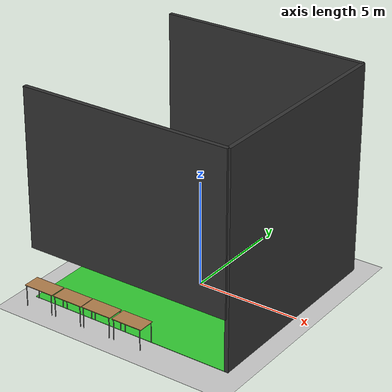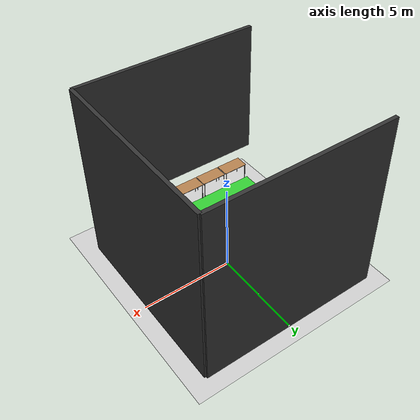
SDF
<sdf version="1.6">
 <world name="default">
  <physics type="ode">
   <max_step_size>0.001</max_step_size>
   <real_time_update_rate>0</real_time_update_rate>
   <ode><solver><type>quick</type><iters>1</iters></solver></ode>
  </physics>
  <scene><ambient>0.4 0.4 0.4 1</ambient><background>0.7 0.7 0.7 1</background><shadows>1</shadows></scene>
  <light name="sun" type="directional">
   <cast_shadows>0</cast_shadows>
   <pose>0 0 10 0 -0 0</pose>
   <diffuse>0.8 0.8 0.8 1</diffuse>
   <specular>0.1 0.1 0.1 1</specular>
   <attenuation>
    <range>1000</range>
    <constant>0.9</constant>
    <linear>0.01</linear>
    <quadratic>0.001</quadratic>
   </attenuation>
   <direction>-0.5 0.5 -1</direction>
  </light>
  <spherical_coordinates>
   <surface_model>EARTH_WGS84</surface_model>
   <latitude_deg>51.990634</latitude_deg>
   <longitude_deg>4.376789</longitude_deg>
   <elevation>0</elevation>
   <heading_deg>150</heading_deg>
  </spherical_coordinates>
  <model name="ground_plane">
   <static>1</static>
   <link name="link">
    <collision name="collision">
     <geometry><plane><normal>0 0 1</normal><size>100 100</size></plane></geometry>
     <surface><friction><ode><mu>100</mu><mu2>50</mu2></ode></friction></surface>
    </collision>
    <visual name="visual">
     <cast_shadows>0</cast_shadows>
     <geometry><plane><normal>0 0 1</normal><size>100 100</size></plane></geometry>
     <material>
      <script><uri>file://media/materials/scripts/gazebo.material</uri><name>Gazebo/Grey</name></script>
     </material>
    </visual>
   </link>
  </model>
  <gravity>0 0 -9.8</gravity>
  <magnetic_field>6e-06 2.3e-05 -4.2e-05</magnetic_field>
  <atmosphere type="adiabatic"/>
  <model name="table">
   <static>1</static>
   <link name="link">
    <collision name="surface">
     <pose>0 0 1 0 -0 0</pose>
     <geometry><box><size>1.5 0.8 0.03</size></box></geometry>
     <surface><friction><ode><mu>0.6</mu><mu2>0.6</mu2></ode></friction></surface>
    </collision>
    <visual name="visual1">
     <pose>0 0 1 0 -0 0</pose>
     <geometry><box><size>1.5 0.8 0.03</size></box></geometry>
     <material>
      <script><uri>file://media/materials/scripts/gazebo.material</uri><name>Gazebo/Wood</name></script>
     </material>
    </visual>
    <collision name="front_left_leg">
     <pose>0.68 0.38 0.5 0 -0 0</pose>
     <geometry><cylinder><radius>0.02</radius><length>1</length></cylinder></geometry>
    </collision>
    <visual name="front_left_leg">
     <pose>0.68 0.38 0.5 0 -0 0</pose>
     <geometry><cylinder><radius>0.02</radius><length>1</length></cylinder></geometry>
     <material>
      <script><uri>file://media/materials/scripts/gazebo.material</uri><name>Gazebo/Grey</name></script>
     </material>
    </visual>
    <collision name="front_right_leg">
     <pose>0.68 -0.38 0.5 0 -0 0</pose>
     <geometry><cylinder><radius>0.02</radius><length>1</length></cylinder></geometry>
    </collision>
    <visual name="front_right_leg">
     <pose>0.68 -0.38 0.5 0 -0 0</pose>
     <geometry><cylinder><radius>0.02</radius><length>1</length></cylinder></geometry>
     <material>
      <script><uri>file://media/materials/scripts/gazebo.material</uri><name>Gazebo/Grey</name></script>
     </material>
    </visual>
    <collision name="back_right_leg">
     <pose>-0.68 -0.38 0.5 0 -0 0</pose>
     <geometry><cylinder><radius>0.02</radius><length>1</length></cylinder></geometry>
    </collision>
    <visual name="back_right_leg">
     <pose>-0.68 -0.38 0.5 0 -0 0</pose>
     <geometry><cylinder><radius>0.02</radius><length>1</length></cylinder></geometry>
     <material>
      <script><uri>file://media/materials/scripts/gazebo.material</uri><name>Gazebo/Grey</name></script>
     </material>
    </visual>
    <collision name="back_left_leg">
     <pose>-0.68 0.38 0.5 0 -0 0</pose>
     <geometry><cylinder><radius>0.02</radius><length>1</length></cylinder></geometry>
    </collision>
    <visual name="back_left_leg">
     <pose>-0.68 0.38 0.5 0 -0 0</pose>
     <geometry><cylinder><radius>0.02</radius><length>1</length></cylinder></geometry>
     <material>
      <script><uri>file://media/materials/scripts/gazebo.material</uri><name>Gazebo/Grey</name></script>
     </material>
    </visual>
   </link>
   <pose>-4.32267 -5.41265 0 0 -0 0</pose>
  </model>
  <model name="table_0">
   <static>1</static>
   <link name="link">
    <collision name="surface">
     <pose>0 0 1 0 -0 0</pose>
     <geometry><box><size>1.5 0.8 0.03</size></box></geometry>
     <surface><friction><ode><mu>0.6</mu><mu2>0.6</mu2></ode></friction></surface>
    </collision>
    <visual name="visual1">
     <pose>0 0 1 0 -0 0</pose>
     <geometry><box><size>1.5 0.8 0.03</size></box></geometry>
     <material>
      <script><uri>file://media/materials/scripts/gazebo.material</uri><name>Gazebo/Wood</name></script>
     </material>
    </visual>
    <collision name="front_left_leg">
     <pose>0.68 0.38 0.5 0 -0 0</pose>
     <geometry><cylinder><radius>0.02</radius><length>1</length></cylinder></geometry>
    </collision>
    <visual name="front_left_leg">
     <pose>0.68 0.38 0.5 0 -0 0</pose>
     <geometry><cylinder><radius>0.02</radius><length>1</length></cylinder></geometry>
     <material>
      <script><uri>file://media/materials/scripts/gazebo.material</uri><name>Gazebo/Grey</name></script>
     </material>
    </visual>
    <collision name="front_right_leg">
     <pose>0.68 -0.38 0.5 0 -0 0</pose>
     <geometry><cylinder><radius>0.02</radius><length>1</length></cylinder></geometry>
    </collision>
    <visual name="front_right_leg">
     <pose>0.68 -0.38 0.5 0 -0 0</pose>
     <geometry><cylinder><radius>0.02</radius><length>1</length></cylinder></geometry>
     <material>
      <script><uri>file://media/materials/scripts/gazebo.material</uri><name>Gazebo/Grey</name></script>
     </material>
    </visual>
    <collision name="back_right_leg">
     <pose>-0.68 -0.38 0.5 0 -0 0</pose>
     <geometry><cylinder><radius>0.02</radius><length>1</length></cylinder></geometry>
    </collision>
    <visual name="back_right_leg">
     <pose>-0.68 -0.38 0.5 0 -0 0</pose>
     <geometry><cylinder><radius>0.02</radius><length>1</length></cylinder></geometry>
     <material>
      <script><uri>file://media/materials/scripts/gazebo.material</uri><name>Gazebo/Grey</name></script>
     </material>
    </visual>
    <collision name="back_left_leg">
     <pose>-0.68 0.38 0.5 0 -0 0</pose>
     <geometry><cylinder><radius>0.02</radius><length>1</length></cylinder></geometry>
    </collision>
    <visual name="back_left_leg">
     <pose>-0.68 0.38 0.5 0 -0 0</pose>
     <geometry><cylinder><radius>0.02</radius><length>1</length></cylinder></geometry>
     <material>
      <script><uri>file://media/materials/scripts/gazebo.material</uri><name>Gazebo/Grey</name></script>
     </material>
    </visual>
   </link>
   <pose>-2.76277 -5.40361 0 0 -0 0</pose>
  </model>
  <model name="table_1">
   <static>1</static>
   <link name="link">
    <collision name="surface">
     <pose>0 0 1 0 -0 0</pose>
     <geometry><box><size>1.5 0.8 0.03</size></box></geometry>
     <surface><friction><ode><mu>0.6</mu><mu2>0.6</mu2></ode></friction></surface>
    </collision>
    <visual name="visual1">
     <pose>0 0 1 0 -0 0</pose>
     <geometry><box><size>1.5 0.8 0.03</size></box></geometry>
     <material>
      <script><uri>file://media/materials/scripts/gazebo.material</uri><name>Gazebo/Wood</name></script>
     </material>
    </visual>
    <collision name="front_left_leg">
     <pose>0.68 0.38 0.5 0 -0 0</pose>
     <geometry><cylinder><radius>0.02</radius><length>1</length></cylinder></geometry>
    </collision>
    <visual name="front_left_leg">
     <pose>0.68 0.38 0.5 0 -0 0</pose>
     <geometry><cylinder><radius>0.02</radius><length>1</length></cylinder></geometry>
     <material>
      <script><uri>file://media/materials/scripts/gazebo.material</uri><name>Gazebo/Grey</name></script>
     </material>
    </visual>
    <collision name="front_right_leg">
     <pose>0.68 -0.38 0.5 0 -0 0</pose>
     <geometry><cylinder><radius>0.02</radius><length>1</length></cylinder></geometry>
    </collision>
    <visual name="front_right_leg">
     <pose>0.68 -0.38 0.5 0 -0 0</pose>
     <geometry><cylinder><radius>0.02</radius><length>1</length></cylinder></geometry>
     <material>
      <script><uri>file://media/materials/scripts/gazebo.material</uri><name>Gazebo/Grey</name></script>
     </material>
    </visual>
    <collision name="back_right_leg">
     <pose>-0.68 -0.38 0.5 0 -0 0</pose>
     <geometry><cylinder><radius>0.02</radius><length>1</length></cylinder></geometry>
    </collision>
    <visual name="back_right_leg">
     <pose>-0.68 -0.38 0.5 0 -0 0</pose>
     <geometry><cylinder><radius>0.02</radius><length>1</length></cylinder></geometry>
     <material>
      <script><uri>file://media/materials/scripts/gazebo.material</uri><name>Gazebo/Grey</name></script>
     </material>
    </visual>
    <collision name="back_left_leg">
     <pose>-0.68 0.38 0.5 0 -0 0</pose>
     <geometry><cylinder><radius>0.02</radius><length>1</length></cylinder></geometry>
    </collision>
    <visual name="back_left_leg">
     <pose>-0.68 0.38 0.5 0 -0 0</pose>
     <geometry><cylinder><radius>0.02</radius><length>1</length></cylinder></geometry>
     <material>
      <script><uri>file://media/materials/scripts/gazebo.material</uri><name>Gazebo/Grey</name></script>
     </material>
    </visual>
   </link>
   <pose>-1.22632 -5.39461 0 0 -0 0</pose>
  </model>
  <model name="table_2">
   <static>1</static>
   <link name="link">
    <collision name="surface">
     <pose>0 0 1 0 -0 0</pose>
     <geometry><box><size>1.5 0.8 0.03</size></box></geometry>
     <surface><friction><ode><mu>0.6</mu><mu2>0.6</mu2></ode></friction></surface>
    </collision>
    <visual name="visual1">
     <pose>0 0 1 0 -0 0</pose>
     <geometry><box><size>1.5 0.8 0.03</size></box></geometry>
     <material>
      <script><uri>file://media/materials/scripts/gazebo.material</uri><name>Gazebo/Wood</name></script>
     </material>
    </visual>
    <collision name="front_left_leg">
     <pose>0.68 0.38 0.5 0 -0 0</pose>
     <geometry><cylinder><radius>0.02</radius><length>1</length></cylinder></geometry>
    </collision>
    <visual name="front_left_leg">
     <pose>0.68 0.38 0.5 0 -0 0</pose>
     <geometry><cylinder><radius>0.02</radius><length>1</length></cylinder></geometry>
     <material>
      <script><uri>file://media/materials/scripts/gazebo.material</uri><name>Gazebo/Grey</name></script>
     </material>
    </visual>
    <collision name="front_right_leg">
     <pose>0.68 -0.38 0.5 0 -0 0</pose>
     <geometry><cylinder><radius>0.02</radius><length>1</length></cylinder></geometry>
    </collision>
    <visual name="front_right_leg">
     <pose>0.68 -0.38 0.5 0 -0 0</pose>
     <geometry><cylinder><radius>0.02</radius><length>1</length></cylinder></geometry>
     <material>
      <script><uri>file://media/materials/scripts/gazebo.material</uri><name>Gazebo/Grey</name></script>
     </material>
    </visual>
    <collision name="back_right_leg">
     <pose>-0.68 -0.38 0.5 0 -0 0</pose>
     <geometry><cylinder><radius>0.02</radius><length>1</length></cylinder></geometry>
    </collision>
    <visual name="back_right_leg">
     <pose>-0.68 -0.38 0.5 0 -0 0</pose>
     <geometry><cylinder><radius>0.02</radius><length>1</length></cylinder></geometry>
     <material>
      <script><uri>file://media/materials/scripts/gazebo.material</uri><name>Gazebo/Grey</name></script>
     </material>
    </visual>
    <collision name="back_left_leg">
     <pose>-0.68 0.38 0.5 0 -0 0</pose>
     <geometry><cylinder><radius>0.02</radius><length>1</length></cylinder></geometry>
    </collision>
    <visual name="back_left_leg">
     <pose>-0.68 0.38 0.5 0 -0 0</pose>
     <geometry><cylinder><radius>0.02</radius><length>1</length></cylinder></geometry>
     <material>
      <script><uri>file://media/materials/scripts/gazebo.material</uri><name>Gazebo/Grey</name></script>
     </material>
    </visual>
   </link>
   <pose>0.369055 -5.38977 0 0 -0 0</pose>
  </model>
  <model name="orange_pole">
   <pose>-3.60609 4.59513 1 0 -0 0</pose>
   <static>1</static>
   <link name="link">
    <inertial>
     <mass>1</mass>
     <inertia><ixx>0.083</ixx><ixy>0</ixy><ixz>0</ixz><iyy>0.083</iyy><iyz>0</iyz><izz>0.083</izz></inertia>
    </inertial>
    <collision name="collision">
     <geometry><cylinder><radius>0.3</radius><length>2</length></cylinder></geometry>
    </collision>
    <visual name="visual">
     <geometry><cylinder><radius>0.2</radius><length>2</length></cylinder></geometry>
     <material>
      <ambient>1 0.55 0 1</ambient>
      <diffuse>1 0.55 0 1</diffuse>
      <specular>0.1 0.1 0.1 1</specular>
      <emissive>0 0 0 0</emissive>
     </material>
    </visual>
   </link>
  </model>
  <model name="orange_pole_0">
   <pose>-0.897962 4.54077 1 0 -0 0</pose>
   <static>1</static>
   <link name="link">
    <inertial>
     <mass>1</mass>
     <inertia><ixx>0.083</ixx><ixy>0</ixy><ixz>0</ixz><iyy>0.083</iyy><iyz>0</iyz><izz>0.083</izz></inertia>
    </inertial>
    <collision name="collision">
     <geometry><cylinder><radius>0.3</radius><length>2</length></cylinder></geometry>
    </collision>
    <visual name="visual">
     <geometry><cylinder><radius>0.2</radius><length>2</length></cylinder></geometry>
     <material>
      <ambient>1 0.55 0 1</ambient>
      <diffuse>1 0.55 0 1</diffuse>
      <specular>0.1 0.1 0.1 1</specular>
      <emissive>0 0 0 0</emissive>
     </material>
    </visual>
   </link>
  </model>
  <model name="orange_pole_1">
   <pose>4.41201 -2.15118 1 0 -0 0</pose>
   <static>1</static>
   <link name="link">
    <inertial>
     <mass>1</mass>
     <inertia><ixx>0.083</ixx><ixy>0</ixy><ixz>0</ixz><iyy>0.083</iyy><iyz>0</iyz><izz>0.083</izz></inertia>
    </inertial>
    <collision name="collision">
     <geometry><cylinder><radius>0.3</radius><length>2</length></cylinder></geometry>
    </collision>
    <visual name="visual">
     <geometry><cylinder><radius>0.2</radius><length>2</length></cylinder></geometry>
     <material>
      <ambient>1 0.55 0 1</ambient>
      <diffuse>1 0.55 0 1</diffuse>
      <specular>0.1 0.1 0.1 1</specular>
      <emissive>0 0 0 0</emissive>
     </material>
    </visual>
   </link>
  </model>
  <model name="orange_pole_2">
   <pose>4.42776 -0.974296 1 0 -0 0</pose>
   <static>1</static>
   <link name="link">
    <inertial>
     <mass>1</mass>
     <inertia><ixx>0.083</ixx><ixy>0</ixy><ixz>0</ixz><iyy>0.083</iyy><iyz>0</iyz><izz>0.083</izz></inertia>
    </inertial>
    <collision name="collision">
     <geometry><cylinder><radius>0.3</radius><length>2</length></cylinder></geometry>
    </collision>
    <visual name="visual">
     <geometry><cylinder><radius>0.2</radius><length>2</length></cylinder></geometry>
     <material>
      <ambient>1 0.55 0 1</ambient>
      <diffuse>1 0.55 0 1</diffuse>
      <specular>0.1 0.1 0.1 1</specular>
      <emissive>0 0 0 0</emissive>
     </material>
    </visual>
   </link>
  </model>
  <model name="cyberzoo">
   <static>1</static>
   <pose>-0.184743 -0.031412 0 0 -0 0</pose>
   <link name="floor">
    <pose>0 0 0.01 0 -0 0</pose>
    <visual name="visual">
     <geometry><box><size>10 10 0.02</size></box></geometry>
     <material>
      <ambient>0 0 0 1</ambient>
      <diffuse>0.2 0.8 0.2 1</diffuse>
      <specular>0.2 0.2 0.2 1</specular>
      <emissive>0 0 0 0</emissive>
     </material>
    </visual>
    <collision name="collision"><geometry><box><size>10 10 0.02</size></box></geometry></collision>
   </link>
   <link name="north_wall">
    <pose>0 5 5 0 -0 0</pose>
    <visual name="visual">
     <geometry><box><size>10 0.2 10</size></box></geometry>
     <material>
      <ambient>0 0 0 1</ambient>
      <diffuse>0.2 0.2 0.2 1</diffuse>
      <specular>0 0 0 1</specular>
      <emissive>0 0 0 0</emissive>
     </material>
    </visual>
    <collision name="collision"><geometry><box><size>10 0.2 10</size></box></geometry></collision>
   </link>
   <link name="east_wall">
    <pose>5 0 5 0 -0 0</pose>
    <visual name="visual">
     <geometry><box><size>0.2 10 10</size></box></geometry>
     <material>
      <ambient>0 0 0 1</ambient>
      <diffuse>0.2 0.2 0.2 1</diffuse>
      <specular>0 0 0 1</specular>
      <emissive>0 0 0 0</emissive>
     </material>
    </visual>
    <collision name="collision"><geometry><box><size>0.2 10 10</size></box></geometry></collision>
   </link>
   <link name="south_wall">
    <pose>0 -5 6.25 0 -0 0</pose>
    <visual name="visual">
     <geometry><box><size>10 0.2 7.5</size></box></geometry>
     <material>
      <ambient>0 0 0 1</ambient>
      <diffuse>0.2 0.2 0.2 1</diffuse>
      <specular>0 0 0 1</specular>
      <emissive>0 0 0 0</emissive>
     </material>
    </visual>
    <collision name="collision"><geometry><box><size>10 0.2 7.5</size></box></geometry></collision>
   </link>
  </model>
 </world>
</sdf>
